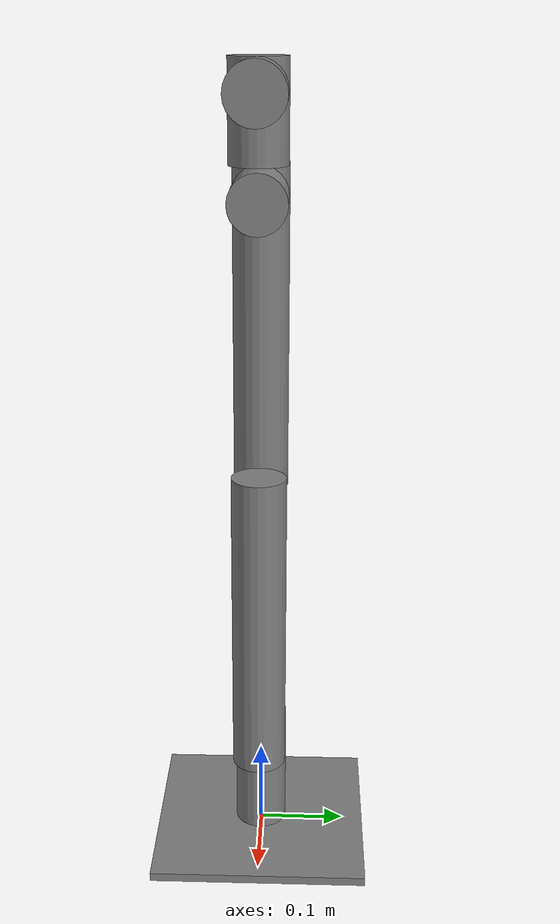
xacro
<?xml version="1.0"?>
<robot name="arm" xmlns:xacro="http://www.ros.org/wiki/xacro">

  <material name="grey">
    <color rgba="0.5 0.5 0.5 1" />
  </material>
  <link name="base_link">
    <visual>
      <origin xyz="0 0 0" rpy="0 0 0" />
      <geometry>
        <box size="0.25 0.25 0.01" />
      </geometry>
      <material name="grey">
        <color rgba="0.5 0.5 0.5 1" />
      </material>
    </visual>
    <collision>
      <origin xyz="0 0 0" rpy="0 0 0" />
      <geometry>
        <box size="0.25 0.25 0.01" />
      </geometry>
    </collision>
    <inertial>
      <origin xyz="0 0 0" rpy="0 0 0"/>
      <mass value="1.0"/>
      <inertia ixx="0.01" ixy="0" ixz="0" iyy="0.01" iyz="0" izz="0.01"/>
    </inertial>
  </link>
  <joint name="base_base_1" type="revolute">
    <parent link="base_link"/>
    <child link="base_1"/>
    <origin xyz="0.0 0 0.005" rpy="0 0 0"/>
    <axis xyz="0 0 1"/>
    <limit effort="1000" lower="-3.14" upper="3.14" velocity="10"/>
  </joint>
  <link name="base_1">
    <visual>
      <origin xyz="0 0 0.075" rpy="0 0 0"/>
      <geometry>
        <cylinder radius="0.03" length="0.15"/>
      </geometry>
      <material name="grey"/>
    </visual>
    <collision>
      <origin xyz="0 0 0.075" rpy="0 0 0"/>
      <geometry>
        <cylinder radius="0.03" length="0.15"/>
      </geometry>
    </collision>
    <inertial>
      <origin xyz="0 0 0.075" rpy="0 0 0"/>
      <mass value="1.0"/>
      <inertia ixx="0.01" ixy="0" ixz="0" iyy="0.01" iyz="0" izz="0.01"/>
    </inertial>
  </link>
  <joint name="base_1_shoulder" type="revolute">
    <parent link="base_1"/>
    <child link="shoulder_link"/>
    <origin xyz="0.0 0 0.135" rpy="0 0 0"/>
    <axis xyz="1 0 0"/>
    <limit effort="1000" lower="-1.57" upper="1.57" velocity="10"/>
  </joint>
  <link name="shoulder_link">
    <visual>
      <origin xyz="0.063 0 0.160" rpy="0 0 0"/>
      <geometry>
        <cylinder radius="0.03" length="0.35"/>
      </geometry>
      <material name="grey"/>
    </visual>
    <collision>
      <origin xyz="0.063 0 0.160" rpy="0 0 0"/>
      <geometry>
        <cylinder radius="0.03" length="0.35"/>
      </geometry>
    </collision>
    <inertial>
      <origin xyz="0.063 0 0.160" rpy="0 0 0"/>
      <mass value="1.0"/>
      <inertia ixx="0.01" ixy="0" ixz="0" iyy="0.01" iyz="0" izz="0.01"/>
    </inertial>
  </link>
  <joint name="shoulder_upper_arm" type="revolute">
    <parent link="shoulder_link"/>
    <child link="upper_arm_link"/>
    <origin xyz="0.0 0 0.32" rpy="0 0 0"/>
    <axis xyz="1 0 0"/>
    <limit effort="1000" lower="-1.57" upper="1.57" velocity="10"/>
  </joint>
  <link name="upper_arm_link">
    <visual>
      <origin xyz="0.0 0 0.160" rpy="0 0 0"/>
      <geometry>
        <cylinder radius="0.03" length="0.35"/>
      </geometry>
      <material name="grey"/>
    </visual>
    <collision>
      <origin xyz="0.0 0 0.160" rpy="0 0 0"/>
      <geometry>
        <cylinder radius="0.03" length="0.35"/>
      </geometry>
    </collision>
    <inertial>
      <origin xyz="0.0 0 0.160" rpy="0 0 0"/>
      <mass value="1.0"/>
      <inertia ixx="0.01" ixy="0" ixz="0" iyy="0.01" iyz="0" izz="0.01"/>
    </inertial>
  </link>
  <joint name="upper_arm_forearm" type="revolute">
    <parent link="upper_arm_link"/>
    <child link="forearm_link"/>
    <origin xyz="0.0 0 0.305" rpy="0 0 0"/>
    <axis xyz="1 0 0"/>
    <limit effort="1000" lower="-1.57" upper="1.57" velocity="10"/>
  </joint>
  <link name="forearm_link">
    <visual>
      <origin xyz="0.068 0 0" rpy="0 1.57 0"/>
      <geometry>
        <cylinder radius="0.03" length="0.07"/>
      </geometry>
      <material name="grey"/>
    </visual>
    <collision>
      <origin xyz="0.068 0 0" rpy="0 1.57 0"/>
      <geometry>
        <cylinder radius="0.03" length="0.07"/>
      </geometry>
    </collision>
    <inertial>
      <origin xyz="0.068 0 0" rpy="0 1.57 0"/>
      <mass value="1.0"/>
      <inertia ixx="0.01" ixy="0" ixz="0" iyy="0.01" iyz="0" izz="0.01"/>
    </inertial>
  </link>
  <joint name="forearm_wrist_1" type="revolute">
    <parent link="forearm_link"/>
    <child link="wrist_1_link"/>
    <origin xyz="0.065 0 0.03" rpy="0 0 0"/>
    <axis xyz="0.0 0.0 1.0"/>
    <limit effort="1000" lower="-1.57" upper="1.57" velocity="10"/>
  </joint>
  <link name="wrist_1_link">
    <visual>
      <origin xyz="0.0 0 0.053" rpy="0 0 0"/>
      <geometry>
        <cylinder radius="0.03" length="0.1"/>
      </geometry>
      <material name="grey"/>
    </visual>
    <collision>
      <origin xyz="0.0 0 0.053" rpy="0 0 0"/>
      <geometry>
        <cylinder radius="0.03" length="0.1"/>
      </geometry>
    </collision>
    <inertial>
      <origin xyz="0.0 0 0.053" rpy="0 0 0"/>
      <mass value="1.0"/>
      <inertia ixx="0.01" ixy="0" ixz="0" iyy="0.01" iyz="0" izz="0.01"/>
    </inertial>
  </link>
  <joint name="wrist_1_wrist_2" type="revolute">
    <parent link="wrist_1_link"/>
    <child link="wrist_2_link"/>
    <origin xyz="0.03 0 0.073" rpy="0 0 0"/>
    <axis xyz="1 0 0"/>
    <limit effort="1000" lower="-1.57" upper="1.57" velocity="10"/>
  </joint>
  <link name="wrist_2_link">
    <visual>
      <origin xyz="0.028 0.0 0.0" rpy="0 1.57 0" />
      <geometry>
        <cylinder radius="0.03" length="0.05"/>
      </geometry>
      <material name="grey"/>
    </visual>
    <collision>
      <origin xyz="0.028 0.0 0.0" rpy="0 1.57 0" />
      <geometry>
        <cylinder radius="0.03" length="0.05"/>
      </geometry>
    </collision>
    <inertial>
      <origin xyz="0.028 0.0 0.0" rpy="0 1.57 0" />
      <mass value="1.0"/>
      <inertia ixx="0.01" ixy="0" ixz="0" iyy="0.01" iyz="0" izz="0.01"/>
    </inertial>
  </link>
  <ros2_control name="ArmHardware" type="system">
      <hardware>
        <plugin>mock_components/GenericSystem</plugin>
        <param name="mock_sensor_commands">false</param>
        <param name="state_following_offset">0.0</param>
      </hardware>
      <joint name="base_base_1">
        <command_interface name="position"/>
        <state_interface name="position"/>
        <state_interface name="velocity"/>
      </joint>
      <joint name="base_1_shoulder">
        <command_interface name="position"/>
        <state_interface name="position"/>
        <state_interface name="velocity"/>
      </joint>
      <joint name="shoulder_upper_arm">
        <command_interface name="position"/>
        <state_interface name="position"/>
        <state_interface name="velocity"/>
      </joint>
      <joint name="upper_arm_forearm">
        <command_interface name="position"/>
        <state_interface name="position"/>
        <state_interface name="velocity"/>
      </joint>
      <joint name="forearm_wrist_1">
        <command_interface name="position"/>
        <state_interface name="position"/>
        <state_interface name="velocity"/>
      </joint>
      <joint name="wrist_1_wrist_2">
        <command_interface name="position"/>
        <state_interface name="position"/>
        <state_interface name="velocity"/>
      </joint>
    </ros2_control>

</robot>
